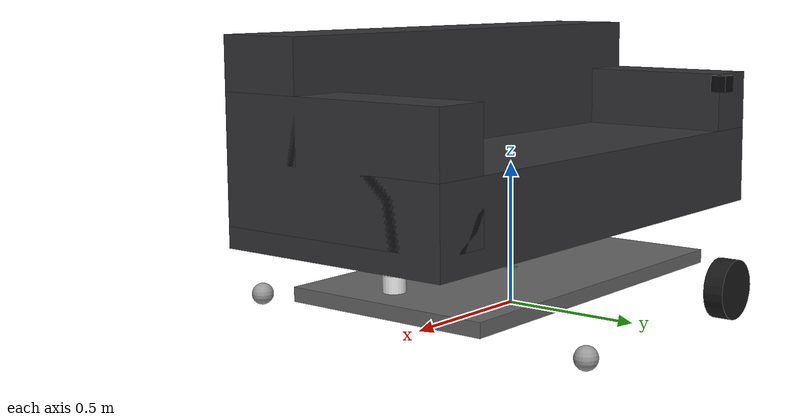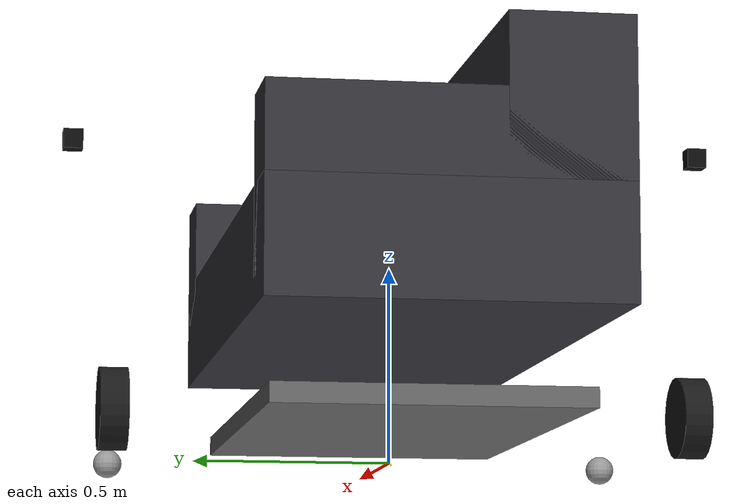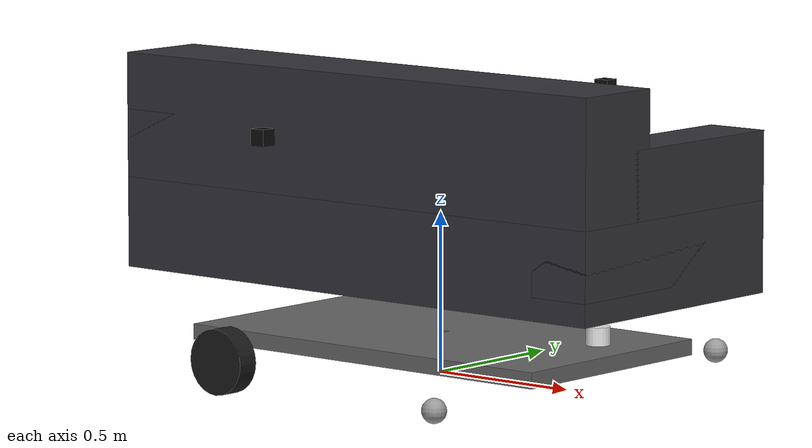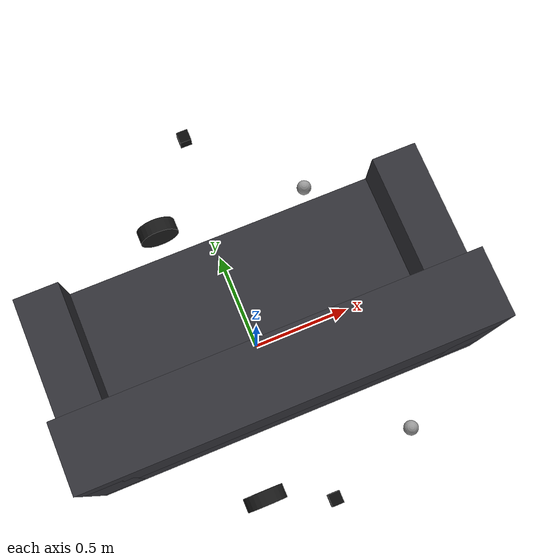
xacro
<?xml version="1.0"?>
<robot name="couchmo" xmlns:xacro="http://www.ros.org/wiki/xacro">

  <!-- ═══════════════════════════════════════════════
       PROPERTIES
  ══════════════════════════════════════════════════ -->

  <!-- Body dimensions (meters) -->
  <xacro:property name="body_w"  value="1.8288"/>   <!-- 72"  width  -->
  <xacro:property name="body_d"  value="0.8636"/>   <!-- 34"  depth  -->
  <xacro:property name="body_h"  value="0.7112"/>   <!-- 28"  height -->

  <!-- Chassis plate sits at ground clearance height -->
  <xacro:property name="ground_clearance" value="0.06"/>   <!-- 60 mm -->
  <xacro:property name="chassis_h"        value="0.05"/>   <!-- chassis plate thickness -->

  <!-- Drive wheels: 8" diameter = 0.2032 m radius 0.1016 m, width 0.07 m -->
  <xacro:property name="wheel_r"   value="0.1016"/>
  <xacro:property name="wheel_w"   value="0.07"/>
  <!-- Wheel axle Y offset from body centerline (inside void, near rear) -->
  <xacro:property name="wheel_y_offset" value="0.72"/>   <!-- ±720 mm from center -->
  <xacro:property name="wheel_x_offset" value="-0.25"/>  <!-- rear of body -->

  <!-- Caster wheels: 3" diameter = 0.0762 m, front corners -->
  <xacro:property name="caster_r"    value="0.0381"/>
  <xacro:property name="caster_x"    value="0.55"/>   <!-- forward of center -->
  <xacro:property name="caster_y"    value="0.68"/>   <!-- inboard of drive wheels -->

  <xacro:property name="armrest_z"     value="0.8128"/>   <!-- 32"  above ground -->
  <xacro:property name="armrest_inset" value="0.10"/>     <!-- 100 mm inboard from armrest outer face -->
  <xacro:property name="cam_hfov"      value="1.361"/>    <!-- ≈ 78° Brio 100 HFOV (rad) -->
  <xacro:property name="cam_rate"      value="10.0"/>     <!-- Hz, matches policy control rate -->
  <xacro:property name="cam_w"         value="640"/>
  <xacro:property name="cam_h"         value="480"/>

  <!-- Masses (kg) — couch body ~45 kg, each wheel ~2 kg, rider up to 130 kg -->
  <xacro:property name="body_mass"   value="45.0"/>
  <xacro:property name="wheel_mass"  value="2.0"/>
  <xacro:property name="caster_mass" value="0.4"/>

  <!-- ═══════════════════════════════════════════════
       INERTIA MACROS
  ══════════════════════════════════════════════════ -->

  <xacro:macro name="box_inertia" params="m w d h">
    <inertial>
      <mass value="${m}"/>
      <inertia
        ixx="${m*(d*d + h*h)/12}"  ixy="0" ixz="0"
        iyy="${m*(w*w + h*h)/12}"  iyz="0"
        izz="${m*(w*w + d*d)/12}"/>
    </inertial>
  </xacro:macro>

  <xacro:macro name="cylinder_inertia" params="m r h">
    <inertial>
      <mass value="${m}"/>
      <inertia
        ixx="${m*(3*r*r + h*h)/12}" ixy="0" ixz="0"
        iyy="${m*(3*r*r + h*h)/12}" iyz="0"
        izz="${m*r*r/2}"/>
    </inertial>
  </xacro:macro>

  <xacro:macro name="sphere_inertia" params="m r">
    <inertial>
      <mass value="${m}"/>
      <inertia
        ixx="${2*m*r*r/5}" ixy="0" ixz="0"
        iyy="${2*m*r*r/5}" iyz="0"
        izz="${2*m*r*r/5}"/>
    </inertial>
  </xacro:macro>

  <!-- ═══════════════════════════════════════════════
       BASE LINK  (reference frame at floor projection of CoG)
  ══════════════════════════════════════════════════ -->

  <link name="base_link">
    <visual>
      <geometry><box size="0.01 0.01 0.01"/></geometry>
    </visual>
  </link>

  <!-- ═══════════════════════════════════════════════
       CHASSIS  (the hidden steel frame inside the void)
  ══════════════════════════════════════════════════ -->

  <joint name="base_to_chassis" type="fixed">
    <parent link="base_link"/>
    <child  link="chassis_link"/>
    <origin xyz="0 0 ${wheel_r}" rpy="0 0 0"/>
  </joint>

  <link name="chassis_link">
    <xacro:box_inertia m="${body_mass}" w="1.3589" d="0.7779" h="${chassis_h}"/>
    <visual>
      <origin xyz="0 0 0" rpy="0 0 0"/>
      <geometry>
        <box size="1.3589 0.7779 ${chassis_h}"/>
      </geometry>
      <material name="steel_grey">
        <color rgba="0.4 0.4 0.4 1.0"/>
      </material>
    </visual>
    <collision>
      <origin xyz="0 0 0" rpy="0 0 0"/>
      <geometry>
        <box size="1.3589 0.7779 ${chassis_h}"/>
      </geometry>
    </collision>
  </link>

  <joint name="chassis_to_body" type="fixed">
    <parent link="chassis_link"/>
    <child  link="couch_body"/>
    <origin xyz="0 0 ${chassis_h/2 + (body_h - wheel_r)/2}" rpy="0 0 0"/>
  </joint>

  <link name="couch_body">
    <!-- Seat cushion volume (lower 40% of height) -->
    <visual>
      <origin xyz="0 0 0" rpy="0 0 0"/>
      <geometry>
        <box size="${body_w} ${body_d} ${body_h * 0.40}"/>
      </geometry>
      <material name="fabric_charcoal">
        <color rgba="0.20 0.20 0.22 1.0"/>
      </material>
    </visual>
    <!-- Back rest (upper 55%, rear 35% of depth) -->
    <visual>
      <origin xyz="0 ${-body_d*0.325} ${body_h*0.475}" rpy="0 0 0"/>
      <geometry>
        <box size="${body_w} ${body_d*0.35} ${body_h*0.55}"/>
      </geometry>
      <material name="fabric_charcoal">
        <color rgba="0.20 0.20 0.22 1.0"/>
      </material>
    </visual>
    <!-- Left armrest -->
    <visual>
      <origin xyz="${body_w/2 - 0.1} 0 ${body_h*0.20}" rpy="0 0 0"/>
      <geometry>
        <box size="0.20 ${body_d} ${body_h*0.60}"/>
      </geometry>
      <material name="fabric_charcoal">
        <color rgba="0.20 0.20 0.22 1.0"/>
      </material>
    </visual>
    <!-- Right armrest -->
    <visual>
      <origin xyz="${-(body_w/2 - 0.1)} 0 ${body_h*0.20}" rpy="0 0 0"/>
      <geometry>
        <box size="0.20 ${body_d} ${body_h*0.60}"/>
      </geometry>
      <material name="fabric_charcoal">
        <color rgba="0.20 0.20 0.22 1.0"/>
      </material>
    </visual>
    <!-- Unified collision box (conservative hull) -->
    <collision>
      <origin xyz="0 0 0" rpy="0 0 0"/>
      <geometry>
        <box size="${body_w} ${body_d} ${body_h}"/>
      </geometry>
    </collision>
    <xacro:box_inertia m="5.0" w="${body_w}" d="${body_d}" h="${body_h}"/>
  </link>

  <!-- ═══════════════════════════════════════════════
       DRIVE WHEEL MACRO
  ══════════════════════════════════════════════════ -->

  <xacro:macro name="drive_wheel" params="name side reflect">
    <joint name="${name}_joint" type="continuous">
      <parent link="chassis_link"/>
      <child  link="${name}_link"/>
      <origin xyz="${wheel_x_offset} ${reflect * wheel_y_offset} 0" rpy="0 0 0"/>
      <axis xyz="0 1 0"/>
      <dynamics damping="0.05" friction="0.1"/>
    </joint>

    <link name="${name}_link">
      <xacro:cylinder_inertia m="${wheel_mass}" r="${wheel_r}" h="${wheel_w}"/>
      <visual>
        <origin xyz="0 0 0" rpy="${pi/2} 0 0"/>
        <geometry>
          <cylinder radius="${wheel_r}" length="${wheel_w}"/>
        </geometry>
        <material name="rubber_black">
          <color rgba="0.10 0.10 0.10 1.0"/>
        </material>
      </visual>
      <collision>
        <origin xyz="0 0 0" rpy="${pi/2} 0 0"/>
        <geometry>
          <cylinder radius="${wheel_r}" length="${wheel_w}"/>
        </geometry>
      </collision>
    </link>

    <!-- Gazebo friction for drive wheel -->
    <gazebo reference="${name}_link">
      <mu1>1.2</mu1>
      <mu2>0.8</mu2>
      <kp>1e6</kp>
      <kd>100</kd>
    </gazebo>
  </xacro:macro>

  <xacro:drive_wheel name="left_wheel"  side="left"  reflect="1"/>
  <xacro:drive_wheel name="right_wheel" side="right" reflect="-1"/>

  <!-- ═══════════════════════════════════════════════
       CASTER WHEEL MACRO  (passive, ball-type)
  ══════════════════════════════════════════════════ -->

  <xacro:macro name="caster_wheel" params="name x_sign y_sign">
    <joint name="${name}_joint" type="fixed">
      <parent link="chassis_link"/>
      <child  link="${name}_link"/>
      <origin xyz="${x_sign * caster_x} ${y_sign * caster_y} ${-wheel_r + caster_r}" rpy="0 0 0"/>
    </joint>

    <link name="${name}_link">
      <xacro:sphere_inertia m="${caster_mass}" r="${caster_r}"/>
      <visual>
        <geometry><sphere radius="${caster_r}"/></geometry>
        <material name="caster_grey">
          <color rgba="0.6 0.6 0.6 1.0"/>
        </material>
      </visual>
      <collision>
        <geometry><sphere radius="${caster_r}"/></geometry>
      </collision>
    </link>

    <gazebo reference="${name}_link">
      <mu1>0.01</mu1>
      <mu2>0.01</mu2>
    </gazebo>
  </xacro:macro>

  <xacro:caster_wheel name="front_left_caster"  x_sign="1"  y_sign="1"/>
  <xacro:caster_wheel name="front_right_caster" x_sign="1"  y_sign="-1"/>

  <!-- ═══════════════════════════════════════════════
       IMU LINK  (mounted on chassis, center)
  ══════════════════════════════════════════════════ -->

  <joint name="imu_joint" type="fixed">
    <parent link="chassis_link"/>
    <child  link="imu_link"/>
    <origin xyz="0 0 0.02" rpy="0 0 0"/>
  </joint>

  <link name="imu_link">
    <visual>
      <geometry><box size="0.04 0.04 0.01"/></geometry>
      <material name="pcb_green"><color rgba="0.1 0.5 0.1 1.0"/></material>
    </visual>
    <inertial>
      <mass value="0.05"/>
      <inertia ixx="1e-6" ixy="0" ixz="0" iyy="1e-6" iyz="0" izz="1e-6"/>
    </inertial>
  </link>

  <joint name="lidar_joint" type="fixed">
    <parent link="chassis_link"/>
    <child  link="lidar_link"/>
    <!-- 50 mm behind front edge of chassis void, 80 mm above chassis plate -->
    <origin xyz="0.62 0 0.08" rpy="0 0 0"/>
  </joint>

  <link name="lidar_link">
    <visual>
      <geometry><cylinder radius="0.038" length="0.056"/></geometry>
      <material name="lidar_white"><color rgba="0.9 0.9 0.9 1.0"/></material>
    </visual>
    <inertial>
      <mass value="0.18"/>
      <inertia ixx="1e-4" ixy="0" ixz="0" iyy="1e-4" iyz="0" izz="1e-4"/>
    </inertial>
  </link>

  <xacro:macro name="armrest_camera" params="prefix y_sign">
    <joint name="${prefix}_camera_joint" type="fixed">
      <parent link="chassis_link"/>
      <child  link="${prefix}_camera_link"/>
      <!-- chassis_link sits at z=wheel_r above ground; subtract to get local z -->
      <origin xyz="0 ${y_sign * (body_w/2 - armrest_inset)} ${armrest_z - wheel_r}"
              rpy="0 0 0"/>
    </joint>

    <link name="${prefix}_camera_link">
      <visual>
        <origin xyz="0 0 0" rpy="0 0 0"/>
        <geometry><box size="0.05 0.05 0.05"/></geometry>
        <material name="cam_black"><color rgba="0.05 0.05 0.05 1.0"/></material>
      </visual>
      <collision>
        <origin xyz="0 0 0" rpy="0 0 0"/>
        <geometry><box size="0.05 0.05 0.05"/></geometry>
      </collision>
      <inertial>
        <mass value="0.001"/>
        <inertia ixx="1e-7" ixy="0" ixz="0" iyy="1e-7" iyz="0" izz="1e-7"/>
      </inertial>
    </link>

    <!-- Optical frame: REP-103 (z forward, x right, y down) -->
    <joint name="${prefix}_camera_optical_joint" type="fixed">
      <parent link="${prefix}_camera_link"/>
      <child  link="${prefix}_camera_link_optical"/>
      <origin xyz="0 0 0" rpy="${-pi/2} 0 ${-pi/2}"/>
    </joint>

    <link name="${prefix}_camera_link_optical"/>

    <gazebo reference="${prefix}_camera_link">
      <sensor name="${prefix}_camera" type="camera">
        <always_on>true</always_on>
        <visualize>false</visualize>
        <update_rate>${cam_rate}</update_rate>
        <camera name="${prefix}_camera">
          <horizontal_fov>${cam_hfov}</horizontal_fov>
          <image>
            <width>${cam_w}</width>
            <height>${cam_h}</height>
            <format>R8G8B8</format>
          </image>
          <clip>
            <near>0.05</near>
            <far>50.0</far>
          </clip>
          <noise>
            <type>gaussian</type>
            <mean>0.0</mean>
            <stddev>0.005</stddev>
          </noise>
        </camera>
        <plugin name="${prefix}_camera_plugin" filename="libgazebo_ros_camera.so">
          <camera_name>${prefix}_cam</camera_name>
          <frame_name>${prefix}_camera_link_optical</frame_name>
          <hack_baseline>0.0</hack_baseline>
        </plugin>
      </sensor>
    </gazebo>
  </xacro:macro>

  <xacro:armrest_camera prefix="left"  y_sign="1"/>
  <xacro:armrest_camera prefix="right" y_sign="-1"/>

  <!-- ═══════════════════════════════════════════════
       GAZEBO PLUGINS
  ══════════════════════════════════════════════════ -->

  <!-- Differential drive controller -->
  <gazebo>
    <plugin name="diff_drive" filename="libgazebo_ros_diff_drive.so">
      <update_rate>50</update_rate>
      <left_joint>left_wheel_joint</left_joint>
      <right_joint>right_wheel_joint</right_joint>
      <wheel_separation>${wheel_y_offset * 2}</wheel_separation>
      <wheel_diameter>${wheel_r * 2}</wheel_diameter>
      <max_wheel_torque>40</max_wheel_torque>
      <max_wheel_acceleration>2.0</max_wheel_acceleration>
      <command_topic>cmd_vel</command_topic>
      <publish_odom>true</publish_odom>
      <publish_odom_tf>true</publish_odom_tf>
      <publish_wheel_tf>true</publish_wheel_tf>
      <odometry_topic>odom</odometry_topic>
      <odometry_frame>odom</odometry_frame>
      <robot_base_frame>base_link</robot_base_frame>
    </plugin>
  </gazebo>

  <!-- RPLidar A3 (2D scan) -->
  <gazebo reference="lidar_link">
    <sensor name="lidar" type="ray">
      <always_on>true</always_on>
      <visualize>true</visualize>
      <update_rate>15</update_rate>
      <ray>
        <scan>
          <horizontal>
            <samples>720</samples>
            <resolution>1</resolution>
            <min_angle>-3.14159</min_angle>
            <max_angle>3.14159</max_angle>
          </horizontal>
        </scan>
        <range>
          <min>0.15</min>
          <max>25.0</max>
          <resolution>0.01</resolution>
        </range>
        <noise>
          <type>gaussian</type>
          <mean>0.0</mean>
          <stddev>0.02</stddev>
        </noise>
      </ray>
      <plugin name="lidar_plugin" filename="libgazebo_ros_ray_sensor.so">
        <ros>
          <remapping>~/out:=scan</remapping>
        </ros>
        <output_type>sensor_msgs/LaserScan</output_type>
        <frame_name>lidar_link</frame_name>
      </plugin>
    </sensor>
  </gazebo>

  <!-- IMU sensor -->
  <gazebo reference="imu_link">
    <sensor name="imu_sensor" type="imu">
      <always_on>true</always_on>
      <update_rate>100</update_rate>
      <plugin name="imu_plugin" filename="libgazebo_ros_imu_sensor.so">
        <ros>
          <remapping>~/out:=imu</remapping>
        </ros>
        <initial_orientation_as_reference>false</initial_orientation_as_reference>
      </plugin>
      <imu>
        <angular_velocity>
          <x><noise type="gaussian"><mean>0</mean><stddev>0.009</stddev></noise></x>
          <y><noise type="gaussian"><mean>0</mean><stddev>0.009</stddev></noise></y>
          <z><noise type="gaussian"><mean>0</mean><stddev>0.009</stddev></noise></z>
        </angular_velocity>
        <linear_acceleration>
          <x><noise type="gaussian"><mean>0</mean><stddev>0.021</stddev></noise></x>
          <y><noise type="gaussian"><mean>0</mean><stddev>0.021</stddev></noise></y>
          <z><noise type="gaussian"><mean>0</mean><stddev>0.021</stddev></noise></z>
        </linear_acceleration>
      </imu>
    </sensor>
  </gazebo>

</robot>
